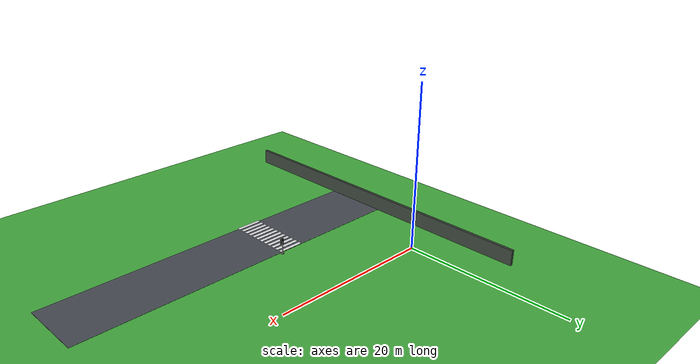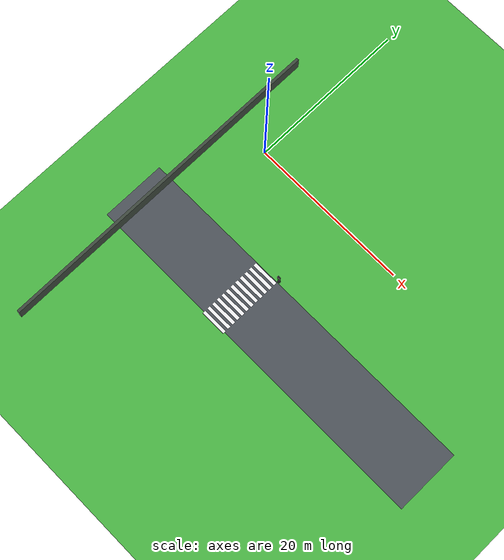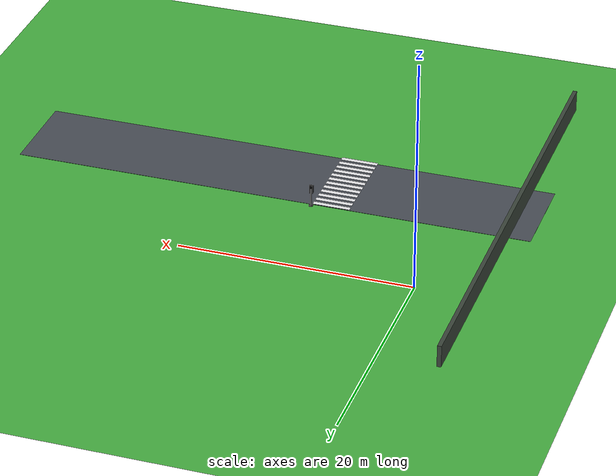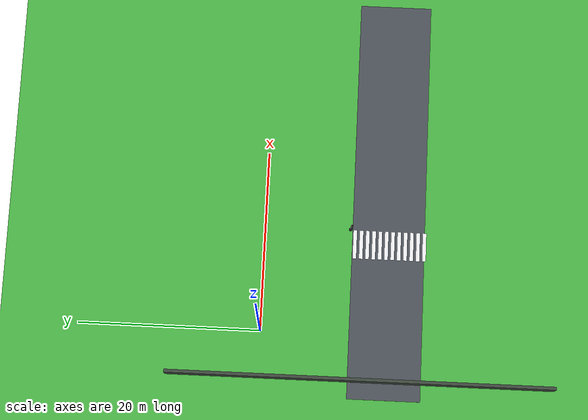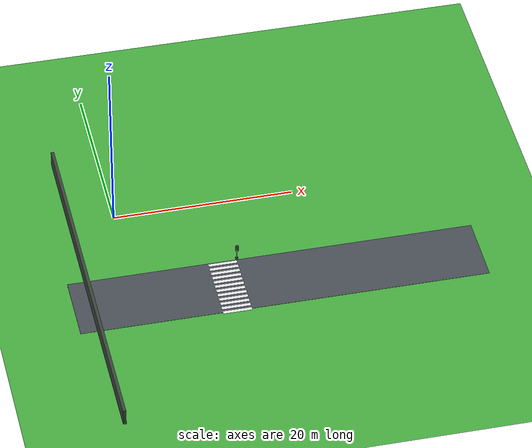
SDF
<sdf version="1.10">
 <world name="city_second">
  <model name="ground_plane">
   <static>true</static>
   <link name="link">
    <collision name="collision">
     <geometry><plane><normal>0 0 1</normal><size>45 46</size></plane></geometry>
    </collision>
    <visual name="visual">
     <geometry><plane><normal>0 0 1</normal><size>45 46</size></plane></geometry>
     <material>
      <ambient>0.280000001 0.689999998 0.25999999 1</ambient>
      <diffuse>0.280000001 0.689999998 0.25999999 1</diffuse>
      <specular>0.0299999993 0.0299999993 0.0299999993 1</specular>
     </material>
    </visual>
    <inertial>
     <mass>1</mass>
     <inertia><ixx>1</ixx><ixy>0</ixy><ixz>0</ixz><iyy>1</iyy><iyz>0</iyz><izz>1</izz></inertia>
    </inertial>
   </link>
   <pose>15.5 -11 0 0 0 0</pose>
  </model>
  <model name="crosswalk_v_2_1_east_5_3">
   <static>true</static>
   <pose>10.1084 -13.809400000000002 0.017000000000000001 0 0 0</pose>
   <link name="stripe_1">
    <collision name="collision">
     <geometry><box><size>3.2000000000000002 0.41999999999999998 0.01</size></box></geometry>
    </collision>
    <visual name="visual">
     <geometry><box><size>3.2000000000000002 0.41999999999999998 0.01</size></box></geometry>
     <material>
      <ambient>0.920000017 0.920000017 0.930000007 1</ambient>
      <diffuse>0.920000017 0.920000017 0.930000007 1</diffuse>
      <specular>0.0299999993 0.0299999993 0.0299999993 1</specular>
     </material>
    </visual>
    <pose>0 -3.8500000000000001 0 0 0 0</pose>
    <inertial>
     <mass>1</mass>
     <inertia><ixx>1</ixx><ixy>0</ixy><ixz>0</ixz><iyy>1</iyy><iyz>0</iyz><izz>1</izz></inertia>
    </inertial>
   </link>
   <link name="stripe_2">
    <collision name="collision">
     <geometry><box><size>3.2000000000000002 0.41999999999999998 0.01</size></box></geometry>
    </collision>
    <visual name="visual">
     <geometry><box><size>3.2000000000000002 0.41999999999999998 0.01</size></box></geometry>
     <material>
      <ambient>0.920000017 0.920000017 0.930000007 1</ambient>
      <diffuse>0.920000017 0.920000017 0.930000007 1</diffuse>
      <specular>0.0299999993 0.0299999993 0.0299999993 1</specular>
     </material>
    </visual>
    <pose>0 -3.1499999999999968 0 0 0 0</pose>
    <inertial>
     <mass>1</mass>
     <inertia><ixx>1</ixx><ixy>0</ixy><ixz>0</ixz><iyy>1</iyy><iyz>0</iyz><izz>1</izz></inertia>
    </inertial>
   </link>
   <link name="stripe_3">
    <collision name="collision">
     <geometry><box><size>3.2000000000000002 0.41999999999999998 0.01</size></box></geometry>
    </collision>
    <visual name="visual">
     <geometry><box><size>3.2000000000000002 0.41999999999999998 0.01</size></box></geometry>
     <material>
      <ambient>0.920000017 0.920000017 0.930000007 1</ambient>
      <diffuse>0.920000017 0.920000017 0.930000007 1</diffuse>
      <specular>0.0299999993 0.0299999993 0.0299999993 1</specular>
     </material>
    </visual>
    <pose>0 -2.4499999999999975 0 0 0 0</pose>
    <inertial>
     <mass>1</mass>
     <inertia><ixx>1</ixx><ixy>0</ixy><ixz>0</ixz><iyy>1</iyy><iyz>0</iyz><izz>1</izz></inertia>
    </inertial>
   </link>
   <link name="stripe_4">
    <collision name="collision">
     <geometry><box><size>3.2000000000000002 0.41999999999999998 0.01</size></box></geometry>
    </collision>
    <visual name="visual">
     <geometry><box><size>3.2000000000000002 0.41999999999999998 0.01</size></box></geometry>
     <material>
      <ambient>0.920000017 0.920000017 0.930000007 1</ambient>
      <diffuse>0.920000017 0.920000017 0.930000007 1</diffuse>
      <specular>0.0299999993 0.0299999993 0.0299999993 1</specular>
     </material>
    </visual>
    <pose>0 -1.7499999999999982 0 0 0 0</pose>
    <inertial>
     <mass>1</mass>
     <inertia><ixx>1</ixx><ixy>0</ixy><ixz>0</ixz><iyy>1</iyy><iyz>0</iyz><izz>1</izz></inertia>
    </inertial>
   </link>
   <link name="stripe_5">
    <collision name="collision">
     <geometry><box><size>3.2000000000000002 0.41999999999999998 0.01</size></box></geometry>
    </collision>
    <visual name="visual">
     <geometry><box><size>3.2000000000000002 0.41999999999999998 0.01</size></box></geometry>
     <material>
      <ambient>0.920000017 0.920000017 0.930000007 1</ambient>
      <diffuse>0.920000017 0.920000017 0.930000007 1</diffuse>
      <specular>0.0299999993 0.0299999993 0.0299999993 1</specular>
     </material>
    </visual>
    <pose>0 -1.0499999999999989 0 0 0 0</pose>
    <inertial>
     <mass>1</mass>
     <inertia><ixx>1</ixx><ixy>0</ixy><ixz>0</ixz><iyy>1</iyy><iyz>0</iyz><izz>1</izz></inertia>
    </inertial>
   </link>
   <link name="stripe_6">
    <collision name="collision">
     <geometry><box><size>3.2000000000000002 0.41999999999999998 0.01</size></box></geometry>
    </collision>
    <visual name="visual">
     <geometry><box><size>3.2000000000000002 0.41999999999999998 0.01</size></box></geometry>
     <material>
      <ambient>0.920000017 0.920000017 0.930000007 1</ambient>
      <diffuse>0.920000017 0.920000017 0.930000007 1</diffuse>
      <specular>0.0299999993 0.0299999993 0.0299999993 1</specular>
     </material>
    </visual>
    <pose>0 -0.34999999999999787 0 0 0 0</pose>
    <inertial>
     <mass>1</mass>
     <inertia><ixx>1</ixx><ixy>0</ixy><ixz>0</ixz><iyy>1</iyy><iyz>0</iyz><izz>1</izz></inertia>
    </inertial>
   </link>
   <link name="stripe_7">
    <collision name="collision">
     <geometry><box><size>3.2000000000000002 0.41999999999999998 0.01</size></box></geometry>
    </collision>
    <visual name="visual">
     <geometry><box><size>3.2000000000000002 0.41999999999999998 0.01</size></box></geometry>
     <material>
      <ambient>0.920000017 0.920000017 0.930000007 1</ambient>
      <diffuse>0.920000017 0.920000017 0.930000007 1</diffuse>
      <specular>0.0299999993 0.0299999993 0.0299999993 1</specular>
     </material>
    </visual>
    <pose>0 0.35000000000000142 0 0 0 0</pose>
    <inertial>
     <mass>1</mass>
     <inertia><ixx>1</ixx><ixy>0</ixy><ixz>0</ixz><iyy>1</iyy><iyz>0</iyz><izz>1</izz></inertia>
    </inertial>
   </link>
   <link name="stripe_8">
    <collision name="collision">
     <geometry><box><size>3.2000000000000002 0.41999999999999998 0.01</size></box></geometry>
    </collision>
    <visual name="visual">
     <geometry><box><size>3.2000000000000002 0.41999999999999998 0.01</size></box></geometry>
     <material>
      <ambient>0.920000017 0.920000017 0.930000007 1</ambient>
      <diffuse>0.920000017 0.920000017 0.930000007 1</diffuse>
      <specular>0.0299999993 0.0299999993 0.0299999993 1</specular>
     </material>
    </visual>
    <pose>0 1.0500000000000025 0 0 0 0</pose>
    <inertial>
     <mass>1</mass>
     <inertia><ixx>1</ixx><ixy>0</ixy><ixz>0</ixz><iyy>1</iyy><iyz>0</iyz><izz>1</izz></inertia>
    </inertial>
   </link>
   <link name="stripe_9">
    <collision name="collision">
     <geometry><box><size>3.2000000000000002 0.41999999999999998 0.01</size></box></geometry>
    </collision>
    <visual name="visual">
     <geometry><box><size>3.2000000000000002 0.41999999999999998 0.01</size></box></geometry>
     <material>
      <ambient>0.920000017 0.920000017 0.930000007 1</ambient>
      <diffuse>0.920000017 0.920000017 0.930000007 1</diffuse>
      <specular>0.0299999993 0.0299999993 0.0299999993 1</specular>
     </material>
    </visual>
    <pose>0 1.7500000000000018 0 0 0 0</pose>
    <inertial>
     <mass>1</mass>
     <inertia><ixx>1</ixx><ixy>0</ixy><ixz>0</ixz><iyy>1</iyy><iyz>0</iyz><izz>1</izz></inertia>
    </inertial>
   </link>
   <link name="stripe_10">
    <collision name="collision">
     <geometry><box><size>3.2000000000000002 0.41999999999999998 0.01</size></box></geometry>
    </collision>
    <visual name="visual">
     <geometry><box><size>3.2000000000000002 0.41999999999999998 0.01</size></box></geometry>
     <material>
      <ambient>0.920000017 0.920000017 0.930000007 1</ambient>
      <diffuse>0.920000017 0.920000017 0.930000007 1</diffuse>
      <specular>0.0299999993 0.0299999993 0.0299999993 1</specular>
     </material>
    </visual>
    <pose>0 2.4500000000000011 0 0 0 0</pose>
    <inertial>
     <mass>1</mass>
     <inertia><ixx>1</ixx><ixy>0</ixy><ixz>0</ixz><iyy>1</iyy><iyz>0</iyz><izz>1</izz></inertia>
    </inertial>
   </link>
   <link name="stripe_11">
    <collision name="collision">
     <geometry><box><size>3.2000000000000002 0.41999999999999998 0.01</size></box></geometry>
    </collision>
    <visual name="visual">
     <geometry><box><size>3.2000000000000002 0.41999999999999998 0.01</size></box></geometry>
     <material>
      <ambient>0.920000017 0.920000017 0.930000007 1</ambient>
      <diffuse>0.920000017 0.920000017 0.930000007 1</diffuse>
      <specular>0.0299999993 0.0299999993 0.0299999993 1</specular>
     </material>
    </visual>
    <pose>0 3.1500000000000021 0 0 0 0</pose>
    <inertial>
     <mass>1</mass>
     <inertia><ixx>1</ixx><ixy>0</ixy><ixz>0</ixz><iyy>1</iyy><iyz>0</iyz><izz>1</izz></inertia>
    </inertial>
   </link>
   <link name="stripe_12">
    <collision name="collision">
     <geometry><box><size>3.2000000000000002 0.41999999999999998 0.01</size></box></geometry>
    </collision>
    <visual name="visual">
     <geometry><box><size>3.2000000000000002 0.41999999999999998 0.01</size></box></geometry>
     <material>
      <ambient>0.920000017 0.920000017 0.930000007 1</ambient>
      <diffuse>0.920000017 0.920000017 0.930000007 1</diffuse>
      <specular>0.0299999993 0.0299999993 0.0299999993 1</specular>
     </material>
    </visual>
    <pose>0 3.8500000000000014 0 0 0 0</pose>
    <inertial>
     <mass>1</mass>
     <inertia><ixx>1</ixx><ixy>0</ixy><ixz>0</ixz><iyy>1</iyy><iyz>0</iyz><izz>1</izz></inertia>
    </inertial>
   </link>
  </model>
  <model name="road_h_2_1">
   <static>true</static>
   <pose>15.5 -13.668 0.01 0 0 0</pose>
   <link name="link">
    <collision name="collision"><geometry><box><size>45 8 0.02</size></box></geometry></collision>
    <visual name="visual">
     <geometry><box><size>45 8 0.02</size></box></geometry>
     <material>
      <ambient>0.289999992 0.310000002 0.340000004 1</ambient>
      <diffuse>0.289999992 0.310000002 0.340000004 1</diffuse>
      <specular>0.0299999993 0.0299999993 0.0299999993 1</specular>
     </material>
    </visual>
    <inertial>
     <mass>1</mass>
     <inertia><ixx>1</ixx><ixy>0</ixy><ixz>0</ixz><iyy>1</iyy><iyz>0</iyz><izz>1</izz></inertia>
    </inertial>
   </link>
  </model>
  <model name="simple_traffic_light_green_south_1_3">
   <static>true</static>
   <pose>11.765058665459204 -9.44188907987707 0 0 0 -3.1415900000000754</pose>
   <link name="base">
    <pose>0 0 0.040000000000000001 0 0 0</pose>
    <collision name="collision">
     <geometry>
      <cylinder><radius>0.17999999999999999</radius><length>0.080000000000000002</length></cylinder>
     </geometry>
    </collision>
    <visual name="visual">
     <geometry>
      <cylinder><radius>0.17999999999999999</radius><length>0.080000000000000002</length></cylinder>
     </geometry>
     <material>
      <ambient>0.0799999982 0.0799999982 0.0799999982 1</ambient>
      <diffuse>0.0799999982 0.0799999982 0.0799999982 1</diffuse>
      <specular>0.150000006 0.150000006 0.150000006 1</specular>
      <emissive>0 0 0 1</emissive>
     </material>
    </visual>
    <inertial>
     <mass>1</mass>
     <inertia><ixx>1</ixx><ixy>0</ixy><ixz>0</ixz><iyy>1</iyy><iyz>0</iyz><izz>1</izz></inertia>
    </inertial>
   </link>
   <link name="pole">
    <pose>-5.3290705182007514e-15 -1.0658141036401503e-14 0.80000000000000038 0 0 0</pose>
    <collision name="collision">
     <geometry>
      <cylinder><radius>0.044999999999999998</radius><length>1.6000000000000001</length></cylinder>
     </geometry>
    </collision>
    <visual name="visual">
     <geometry>
      <cylinder><radius>0.044999999999999998</radius><length>1.6000000000000001</length></cylinder>
     </geometry>
     <material>
      <ambient>0.0799999982 0.0799999982 0.0799999982 1</ambient>
      <diffuse>0.0799999982 0.0799999982 0.0799999982 1</diffuse>
      <specular>0.150000006 0.150000006 0.150000006 1</specular>
      <emissive>0 0 0 1</emissive>
     </material>
    </visual>
    <inertial>
     <mass>1</mass>
     <inertia><ixx>1</ixx><ixy>0</ixy><ixz>0</ixz><iyy>1</iyy><iyz>0</iyz><izz>1</izz></inertia>
    </inertial>
   </link>
   <link name="signal_box">
    <pose>-5.3290705182007514e-15 0.089999999999994529 1.5500000000000007 0 0 0</pose>
    <collision name="collision">
     <geometry><box><size>0.34000000000000002 0.16 0.71999999999999997</size></box></geometry>
    </collision>
    <visual name="visual">
     <geometry><box><size>0.34000000000000002 0.16 0.71999999999999997</size></box></geometry>
     <material>
      <ambient>0.0199999996 0.0199999996 0.0199999996 1</ambient>
      <diffuse>0.0199999996 0.0199999996 0.0199999996 1</diffuse>
      <specular>0.150000006 0.150000006 0.150000006 1</specular>
      <emissive>0 0 0 1</emissive>
     </material>
    </visual>
    <inertial>
     <mass>1</mass>
     <inertia><ixx>1</ixx><ixy>0</ixy><ixz>0</ixz><iyy>1</iyy><iyz>0</iyz><izz>1</izz></inertia>
    </inertial>
   </link>
   <link name="red_lens">
    <pose>-5.3290705182007514e-15 0.18099999999999028 1.78 1.5707963267999998 1.2475048931562623e-16 -1.2475078878636004e-16</pose>
    <collision name="collision">
     <geometry><cylinder><radius>0.105</radius><length>0.035000000000000003</length></cylinder></geometry>
    </collision>
    <visual name="visual">
     <geometry><cylinder><radius>0.105</radius><length>0.035000000000000003</length></cylinder></geometry>
     <material>
      <ambient>0.0799999982 0.0799999982 0.0799999982 1</ambient>
      <diffuse>0.0799999982 0.0799999982 0.0799999982 1</diffuse>
      <specular>0.150000006 0.150000006 0.150000006 1</specular>
      <emissive>0 0 0 1</emissive>
     </material>
    </visual>
    <inertial>
     <mass>1</mass>
     <inertia><ixx>1</ixx><ixy>0</ixy><ixz>0</ixz><iyy>1</iyy><iyz>0</iyz><izz>1</izz></inertia>
    </inertial>
   </link>
   <link name="yellow_lens">
    <pose>-5.3290705182007514e-15 0.1819999999999844 1.5500000000000007 1.5707963267999998 1.2475048931562623e-16 -1.2475078878636004e-16</pose>
    <collision name="collision">
     <geometry>
      <cylinder><radius>0.095000000000000001</radius><length>0.035000000000000003</length></cylinder>
     </geometry>
    </collision>
    <visual name="visual">
     <geometry>
      <cylinder><radius>0.095000000000000001</radius><length>0.035000000000000003</length></cylinder>
     </geometry>
     <material>
      <ambient>0.119999997 0.100000001 0.0199999996 1</ambient>
      <diffuse>0.119999997 0.100000001 0.0199999996 1</diffuse>
      <specular>0.150000006 0.150000006 0.150000006 1</specular>
      <emissive>0 0 0 1</emissive>
     </material>
    </visual>
    <inertial>
     <mass>1</mass>
     <inertia><ixx>1</ixx><ixy>0</ixy><ixz>0</ixz><iyy>1</iyy><iyz>0</iyz><izz>1</izz></inertia>
    </inertial>
   </link>
   <link name="green_lens">
    <pose>-5.3290705182007514e-15 0.18299999999998917 1.3200000000000007 1.5707963267999998 1.2475048931562623e-16 -1.2475078878636004e-16</pose>
    <collision name="collision">
     <geometry><cylinder><radius>0.105</radius><length>0.035000000000000003</length></cylinder></geometry>
    </collision>
    <visual name="visual">
     <geometry><cylinder><radius>0.105</radius><length>0.035000000000000003</length></cylinder></geometry>
     <material>
      <ambient>0.0199999996 1 0.0199999996 1</ambient>
      <diffuse>0.0199999996 1 0.0199999996 1</diffuse>
      <specular>0.150000006 0.150000006 0.150000006 1</specular>
      <emissive>0.0199999996 1 0.0199999996 1</emissive>
     </material>
    </visual>
    <inertial>
     <mass>1</mass>
     <inertia><ixx>1</ixx><ixy>0</ixy><ixz>0</ixz><iyy>1</iyy><iyz>0</iyz><izz>1</izz></inertia>
    </inertial>
   </link>
  </model>
  <model name="crop_fence_west">
   <static>true</static>
   <pose>-5.0 -11.0 0.95 0 0 0</pose>
   <link name="link">
    <collision name="collision"><geometry><box><size>0.35 42.35 1.9</size></box></geometry></collision>
    <visual name="visual">
     <geometry><box><size>0.35 42.35 1.9</size></box></geometry>
     <material>
      <ambient>0.23 0.27 0.23 1</ambient>
      <diffuse>0.23 0.27 0.23 1</diffuse>
      <specular>0.03 0.03 0.03 1</specular>
     </material>
    </visual>
   </link>
  </model>
 </world>
</sdf>
